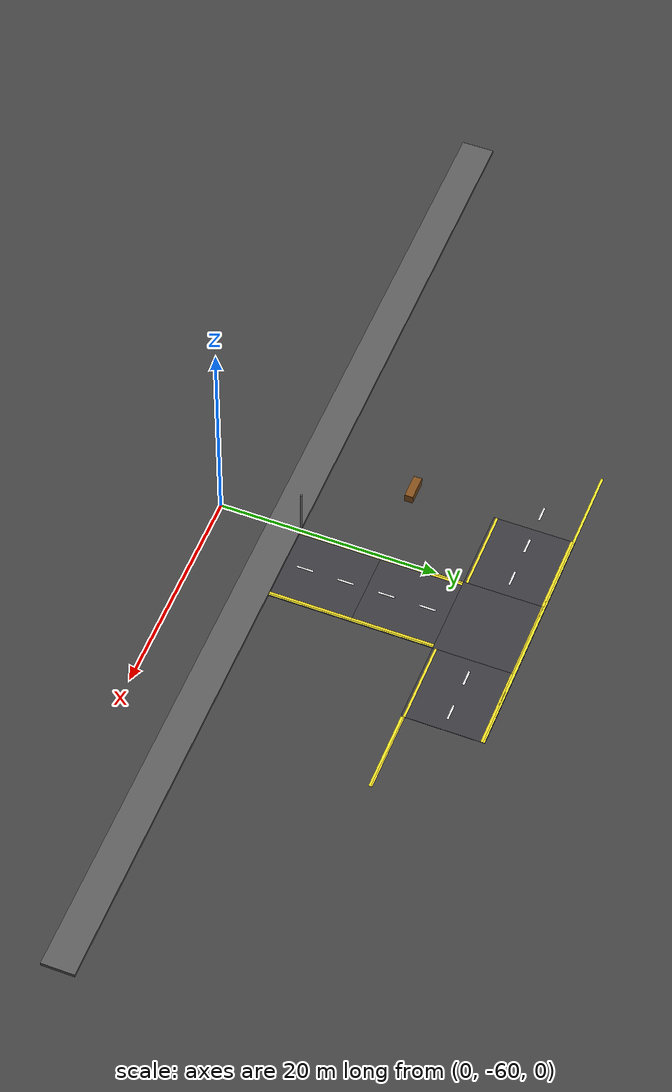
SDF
<sdf version="1.7">
 <world name="compact_city">
  <model name="ground_plane">
   <static>1</static>
   <pose>0 0 0.01 0 -0 0</pose>
   <link name="link">
    <collision name="collision">
     <geometry><plane><normal>0 0 1</normal><size>200 200</size></plane></geometry>
    </collision>
    <visual name="visual">
     <geometry><plane><normal>0 0 1</normal><size>200 200</size></plane></geometry>
     <material>
      <ambient>0.2 0.2 0.2 1</ambient>
      <diffuse>0.25 0.25 0.25 1</diffuse>
      <specular>0.1 0.1 0.1 1</specular>
     </material>
    </visual>
   </link>
  </model>
  <model name="road_tile_73">
   <static>1</static>
   <pose>-3.75 -33.75 0.015 0 -0 0</pose>
   <link name="link">
    <collision name="collision"><geometry><box><size>7.5 7.5 0.03</size></box></geometry></collision>
    <visual name="visual">
     <geometry><box><size>7.5 7.5 0.03</size></box></geometry>
     <material>
      <ambient>0.18 0.18 0.2 1</ambient>
      <diffuse>0.22 0.22 0.24 1</diffuse>
      <specular>0.1 0.1 0.1 1</specular>
     </material>
    </visual>
   </link>
  </model>
  <model name="road_tile_74">
   <static>1</static>
   <pose>3.75 -33.75 0.015 0 -0 0</pose>
   <link name="link">
    <collision name="collision"><geometry><box><size>7.5 7.5 0.03</size></box></geometry></collision>
    <visual name="visual">
     <geometry><box><size>7.5 7.5 0.03</size></box></geometry>
     <material>
      <ambient>0.18 0.18 0.2 1</ambient>
      <diffuse>0.22 0.22 0.24 1</diffuse>
      <specular>0.1 0.1 0.1 1</specular>
     </material>
    </visual>
   </link>
  </model>
  <model name="road_tile_75">
   <static>1</static>
   <pose>11.25 -33.75 0.015 0 -0 0</pose>
   <link name="link">
    <collision name="collision"><geometry><box><size>7.5 7.5 0.03</size></box></geometry></collision>
    <visual name="visual">
     <geometry><box><size>7.5 7.5 0.03</size></box></geometry>
     <material>
      <ambient>0.18 0.18 0.2 1</ambient>
      <diffuse>0.22 0.22 0.24 1</diffuse>
      <specular>0.1 0.1 0.1 1</specular>
     </material>
    </visual>
   </link>
  </model>
  <model name="road_tile_80">
   <static>1</static>
   <pose>3.75 -41.25 0.015 0 -0 1.5708</pose>
   <link name="link">
    <collision name="collision"><geometry><box><size>7.5 7.5 0.03</size></box></geometry></collision>
    <visual name="visual">
     <geometry><box><size>7.5 7.5 0.03</size></box></geometry>
     <material>
      <ambient>0.18 0.18 0.2 1</ambient>
      <diffuse>0.22 0.22 0.24 1</diffuse>
      <specular>0.1 0.1 0.1 1</specular>
     </material>
    </visual>
   </link>
  </model>
  <model name="road_tile_81">
   <static>1</static>
   <pose>3.75 -48.75 0.015 0 -0 1.5708</pose>
   <link name="link">
    <collision name="collision"><geometry><box><size>7.5 7.5 0.03</size></box></geometry></collision>
    <visual name="visual">
     <geometry><box><size>7.5 7.5 0.03</size></box></geometry>
     <material>
      <ambient>0.18 0.18 0.2 1</ambient>
      <diffuse>0.22 0.22 0.24 1</diffuse>
      <specular>0.1 0.1 0.1 1</specular>
     </material>
    </visual>
   </link>
  </model>
  <model name="sidewalk_south">
   <static>1</static>
   <pose>0 -54 0.15 0 -0 0</pose>
   <link name="link">
    <collision name="collision"><geometry><box><size>96 3 0.3</size></box></geometry></collision>
    <visual name="visual">
     <geometry><box><size>96 3 0.3</size></box></geometry>
     <material>
      <ambient>0.3 0.3 0.3 1</ambient>
      <diffuse>0.35 0.35 0.35 1</diffuse>
      <specular>0.1 0.1 0.1 1</specular>
     </material>
    </visual>
   </link>
  </model>
  <model name="el_187">
   <static>1</static>
   <pose>-3.75 -37.2 0.038 0 -0 0</pose>
   <link name="link">
    <visual name="v">
     <geometry><box><size>7.5 0.225 0.002</size></box></geometry>
     <material><ambient>0.9 0.8 0.1 1</ambient><diffuse>0.95 0.85 0.15 1</diffuse></material>
    </visual>
   </link>
  </model>
  <model name="el_188">
   <static>1</static>
   <pose>-3.75 -30.3 0.038 0 -0 0</pose>
   <link name="link">
    <visual name="v">
     <geometry><box><size>7.5 0.225 0.002</size></box></geometry>
     <material><ambient>0.9 0.8 0.1 1</ambient><diffuse>0.95 0.85 0.15 1</diffuse></material>
    </visual>
   </link>
  </model>
  <model name="el_195">
   <static>1</static>
   <pose>0.3 -48.75 0.038 0 -0 1.5708</pose>
   <link name="link">
    <visual name="v">
     <geometry><box><size>7.5 0.225 0.002</size></box></geometry>
     <material><ambient>0.9 0.8 0.1 1</ambient><diffuse>0.95 0.85 0.15 1</diffuse></material>
    </visual>
   </link>
  </model>
  <model name="el_196">
   <static>1</static>
   <pose>7.2 -48.75 0.038 0 -0 1.5708</pose>
   <link name="link">
    <visual name="v">
     <geometry><box><size>7.5 0.225 0.002</size></box></geometry>
     <material><ambient>0.9 0.8 0.1 1</ambient><diffuse>0.95 0.85 0.15 1</diffuse></material>
    </visual>
   </link>
  </model>
  <model name="el_197">
   <static>1</static>
   <pose>0.3 -41.25 0.038 0 -0 1.5708</pose>
   <link name="link">
    <visual name="v">
     <geometry><box><size>7.5 0.225 0.002</size></box></geometry>
     <material><ambient>0.9 0.8 0.1 1</ambient><diffuse>0.95 0.85 0.15 1</diffuse></material>
    </visual>
   </link>
  </model>
  <model name="el_198">
   <static>1</static>
   <pose>7.2 -41.25 0.038 0 -0 1.5708</pose>
   <link name="link">
    <visual name="v">
     <geometry><box><size>7.5 0.225 0.002</size></box></geometry>
     <material><ambient>0.9 0.8 0.1 1</ambient><diffuse>0.95 0.85 0.15 1</diffuse></material>
    </visual>
   </link>
  </model>
  <model name="el_205">
   <static>1</static>
   <pose>11.25 -37.2 0.038 0 -0 0</pose>
   <link name="link">
    <visual name="v">
     <geometry><box><size>7.5 0.225 0.002</size></box></geometry>
     <material><ambient>0.9 0.8 0.1 1</ambient><diffuse>0.95 0.85 0.15 1</diffuse></material>
    </visual>
   </link>
  </model>
  <model name="el_206">
   <static>1</static>
   <pose>11.25 -30.3 0.038 0 -0 0</pose>
   <link name="link">
    <visual name="v">
     <geometry><box><size>7.5 0.225 0.002</size></box></geometry>
     <material><ambient>0.9 0.8 0.1 1</ambient><diffuse>0.95 0.85 0.15 1</diffuse></material>
    </visual>
   </link>
  </model>
  <model name="ld_65">
   <static>1</static>
   <pose>3.75 -50.625 0.038 0 -0 1.5708</pose>
   <link name="link">
    <visual name="v">
     <geometry><box><size>1.5 0.18 0.002</size></box></geometry>
     <material><ambient>1 1 1 1</ambient><diffuse>0.95 0.95 0.95 1</diffuse></material>
    </visual>
   </link>
  </model>
  <model name="ld_66">
   <static>1</static>
   <pose>3.75 -46.875 0.038 0 -0 1.5708</pose>
   <link name="link">
    <visual name="v">
     <geometry><box><size>1.5 0.18 0.002</size></box></geometry>
     <material><ambient>1 1 1 1</ambient><diffuse>0.95 0.95 0.95 1</diffuse></material>
    </visual>
   </link>
  </model>
  <model name="ld_67">
   <static>1</static>
   <pose>3.75 -43.125 0.038 0 -0 1.5708</pose>
   <link name="link">
    <visual name="v">
     <geometry><box><size>1.5 0.18 0.002</size></box></geometry>
     <material><ambient>1 1 1 1</ambient><diffuse>0.95 0.95 0.95 1</diffuse></material>
    </visual>
   </link>
  </model>
  <model name="ld_68">
   <static>1</static>
   <pose>3.75 -39.375 0.038 0 -0 1.5708</pose>
   <link name="link">
    <visual name="v">
     <geometry><box><size>1.5 0.18 0.002</size></box></geometry>
     <material><ambient>1 1 1 1</ambient><diffuse>0.95 0.95 0.95 1</diffuse></material>
    </visual>
   </link>
  </model>
  <model name="ld_122">
   <static>1</static>
   <pose>-9.375 -33.75 0.038 0 -0 0</pose>
   <link name="link">
    <visual name="v">
     <geometry><box><size>1.5 0.18 0.002</size></box></geometry>
     <material><ambient>1 1 1 1</ambient><diffuse>0.95 0.95 0.95 1</diffuse></material>
    </visual>
   </link>
  </model>
  <model name="ld_123">
   <static>1</static>
   <pose>-5.625 -33.75 0.038 0 -0 0</pose>
   <link name="link">
    <visual name="v">
     <geometry><box><size>1.5 0.18 0.002</size></box></geometry>
     <material><ambient>1 1 1 1</ambient><diffuse>0.95 0.95 0.95 1</diffuse></material>
    </visual>
   </link>
  </model>
  <model name="ld_124">
   <static>1</static>
   <pose>-1.875 -33.75 0.038 0 -0 0</pose>
   <link name="link">
    <visual name="v">
     <geometry><box><size>1.5 0.18 0.002</size></box></geometry>
     <material><ambient>1 1 1 1</ambient><diffuse>0.95 0.95 0.95 1</diffuse></material>
    </visual>
   </link>
  </model>
  <model name="ld_125">
   <static>1</static>
   <pose>9.375 -33.75 0.038 0 -0 0</pose>
   <link name="link">
    <visual name="v">
     <geometry><box><size>1.5 0.18 0.002</size></box></geometry>
     <material><ambient>1 1 1 1</ambient><diffuse>0.95 0.95 0.95 1</diffuse></material>
    </visual>
   </link>
  </model>
  <model name="ld_126">
   <static>1</static>
   <pose>13.125 -33.75 0.038 0 -0 0</pose>
   <link name="link">
    <visual name="v">
     <geometry><box><size>1.5 0.18 0.002</size></box></geometry>
     <material><ambient>1 1 1 1</ambient><diffuse>0.95 0.95 0.95 1</diffuse></material>
    </visual>
   </link>
  </model>
  <model name="ie_305">
   <static>1</static>
   <pose>3.75 -30.3 0.038 0 -0 0</pose>
   <link name="link">
    <visual name="v">
     <geometry><box><size>7.5 0.15 0.002</size></box></geometry>
     <material><ambient>0.9 0.8 0.1 1</ambient><diffuse>0.95 0.85 0.15 1</diffuse></material>
    </visual>
   </link>
  </model>
  <model name="ie_310">
   <static>1</static>
   <pose>18.75 -37.2 0.038 0 -0 0</pose>
   <link name="link">
    <visual name="v">
     <geometry><box><size>7.5 0.15 0.002</size></box></geometry>
     <material><ambient>0.9 0.8 0.1 1</ambient><diffuse>0.95 0.85 0.15 1</diffuse></material>
    </visual>
   </link>
  </model>
  <model name="bench_3">
   <static>1</static>
   <pose>-7.5 -45 0.4 0 -0 0</pose>
   <link name="link">
    <collision name="collision"><geometry><box><size>2.25 0.75 0.8</size></box></geometry></collision>
    <visual name="visual">
     <geometry><box><size>2.25 0.75 0.8</size></box></geometry>
     <material><ambient>0.5 0.3 0.1 1</ambient><diffuse>0.5 0.3 0.1 1</diffuse></material>
    </visual>
   </link>
  </model>
  <model name="pole_4">
   <static>1</static>
   <pose>0 -52.5 2.5 0 -0 0</pose>
   <link name="link">
    <collision name="collision">
     <geometry><cylinder><radius>0.1</radius><length>5</length></cylinder></geometry>
    </collision>
    <visual name="visual">
     <geometry><cylinder><radius>0.1</radius><length>5</length></cylinder></geometry>
     <material><ambient>0.3 0.3 0.3 1</ambient><diffuse>0.4 0.4 0.4 1</diffuse></material>
    </visual>
   </link>
  </model>
  <model name="edge_h_22">
   <static>1</static>
   <pose>0 -30.15 0.038 0 -0 0</pose>
   <link name="link">
    <visual name="visual">
     <geometry><box><size>30 0.225 0.002</size></box></geometry>
     <material><ambient>0.95 0.85 0.1 1</ambient><diffuse>1 0.9 0.15 1</diffuse></material>
    </visual>
   </link>
  </model>
  <model name="edge_ext_43">
   <static>1</static>
   <pose>0.15 -45 0.038 0 -0 1.5708</pose>
   <link name="link">
    <visual name="visual">
     <geometry><box><size>15 0.225 0.002</size></box></geometry>
     <material><ambient>0.95 0.85 0.1 1</ambient><diffuse>1 0.9 0.15 1</diffuse></material>
    </visual>
   </link>
  </model>
  <model name="edge_ext_44">
   <static>1</static>
   <pose>7.35 -45 0.038 0 -0 1.5708</pose>
   <link name="link">
    <visual name="visual">
     <geometry><box><size>15 0.225 0.002</size></box></geometry>
     <material><ambient>0.95 0.85 0.1 1</ambient><diffuse>1 0.9 0.15 1</diffuse></material>
    </visual>
   </link>
  </model>
  <model name="tedge_498">
   <static>1</static>
   <pose>18.75 -37.35 0.038 0 -0 0</pose>
   <link name="link">
    <visual name="visual">
     <geometry><box><size>7.5 0.225 0.002</size></box></geometry>
     <material><ambient>0.95 0.85 0.1 1</ambient><diffuse>1 0.9 0.15 1</diffuse></material>
    </visual>
   </link>
  </model>
 </world>
</sdf>
